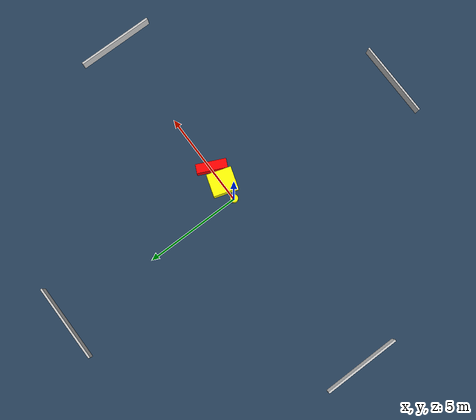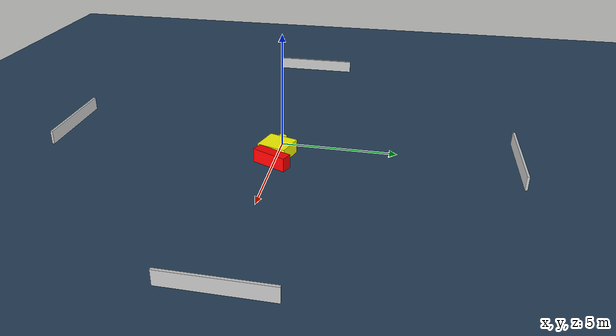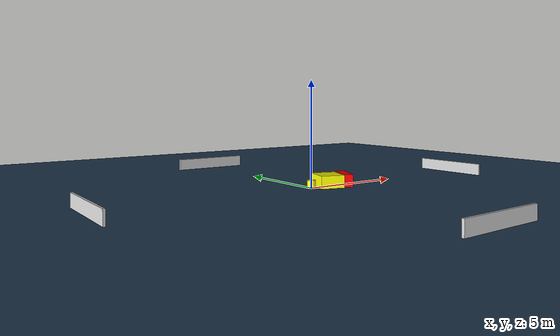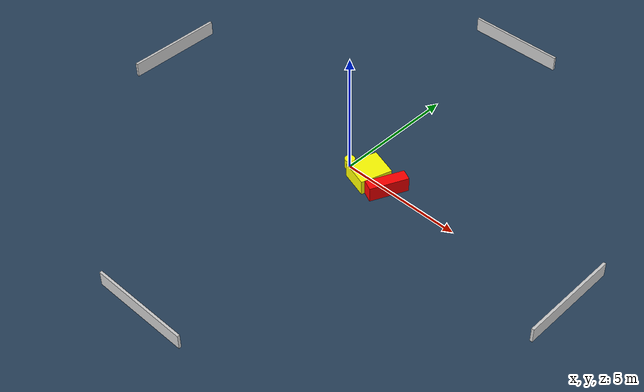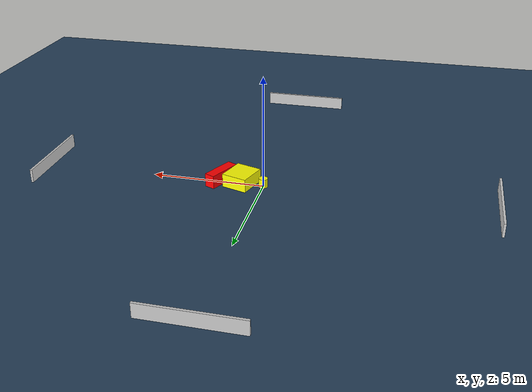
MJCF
<?xml version="1.0" ?>
<mujoco model="generated_environment">
  <option timestep="0.01" integrator="RK4" cone="elliptic"/>
  <default>
    <geom density="1"/>
  </default>
  <asset>
    <texture builtin="gradient" height="3072" name="skybox" rgb1="0.3 0.5 0.7" rgb2="0 0 0" type="skybox" width="512"/>
    <texture builtin="checker" height="300" name="groundplane" rgb1="0.2 0.3 0.4" rgb2="0.1 0.2 0.3" type="2d" width="300"/>
    <material name="groundplane" reflectance="0.2" texrepeat="5 5" texture="groundplane"/>
  </asset>
  <worldbody>
    <light dir="0 0 -1" directional="true" pos="0 0 1.5"/>
    <geom condim="3" friction="0.5 0.005 0.001" material="groundplane" name="floor" pos="0 0 0" size="0 0 0.05" type="plane"/>
    <body name="walls">
      <geom name="wall_1" condim="4" pos="-10.0 0.0 0.3" rgba="0.800000011920929 0.800000011920929 0.800000011920929 1.0" size="0.05 2.0 0.3" type="box"/>
      <geom name="wall_2" condim="4" pos="10.0 0.0 0.3" rgba="0.800000011920929 0.800000011920929 0.800000011920929 1.0" size="0.05 2.0 0.3" type="box"/>
      <geom name="wall_3" condim="4" pos="0.0 -10.0 0.3" rgba="0.800000011920929 0.800000011920929 0.800000011920929 1.0" size="2.0 0.05 0.3" type="box"/>
      <geom name="wall_4" condim="4" pos="0.0 10.0 0.3" rgba="0.800000011920929 0.800000011920929 0.800000011920929 1.0" size="2.0 0.05 0.3" type="box"/>
    </body>
    <body name="robot">
      <joint name="joint_x" type="slide" pos="0 0 0" axis="1 0 0"/>
      <joint name="joint_y" type="slide" pos="0 0 0" axis="0 1 0"/>
      <geom name="robot" type="cylinder" pos="0.0 0.0 0.2" size="0.2 0.2 0.0" mass="5.0" friction="1.0 0.005 0.0001" condim="4" rgba="1.0 1.0 0.0 1.0"/>
    </body>
    <body name="obstacle_1_movable">
      <geom name="obstacle_1_movable" condim="4" pos="0.9813783036013705 -0.01610022354617804 0.3" euler="0 0 72.51055306489309" friction="0.0 0.005 0.001" rgba="1.0 1.0 0.0 1.0" size="0.6391291189712642 0.5787685020501591 0.3" type="box" mass="0.1"/>
      <joint type="free"/>
    </body>
    <body name="obstacle_2_static">
      <geom name="obstacle_2_static" condim="4" pos="1.9228005979094878 -0.061184112816913785 0.3" euler="0 0 65.15833352161609" friction="0.0 0.005 0.001" rgba="1.0 0.0 0.0 1.0" size="0.7755309213002446 0.23237502526939413 0.3" type="box"/>
    </body>
  </worldbody>
  <actuator>
    <motor name="actuator_x" joint="joint_x" gear="1" ctrlrange="-1 1"/>
    <motor name="actuator_y" joint="joint_y" gear="1" ctrlrange="-1 1"/>
  </actuator>
</mujoco>
